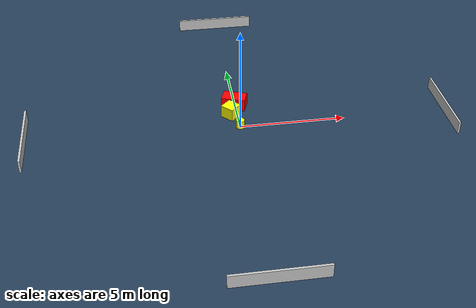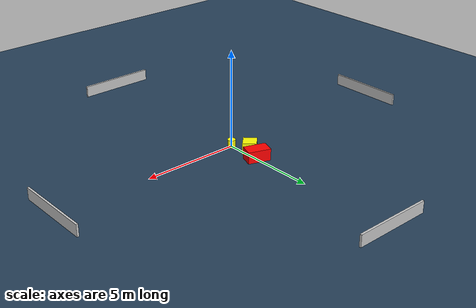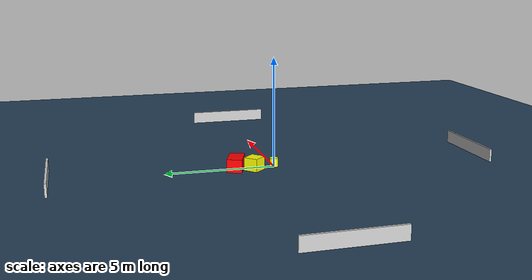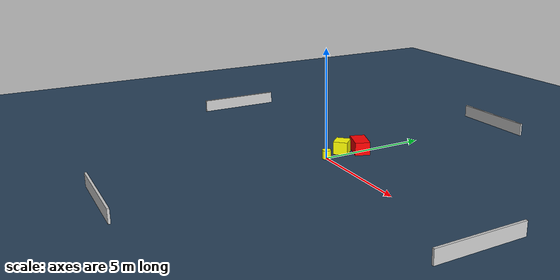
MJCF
<?xml version="1.0" ?>
<mujoco model="generated_environment">
  <option timestep="0.01" integrator="RK4" cone="elliptic"/>
  <default>
    <geom density="1"/>
  </default>
  <asset>
    <texture builtin="gradient" height="3072" name="skybox" rgb1="0.3 0.5 0.7" rgb2="0 0 0" type="skybox" width="512"/>
    <texture builtin="checker" height="300" name="groundplane" rgb1="0.2 0.3 0.4" rgb2="0.1 0.2 0.3" type="2d" width="300"/>
    <material name="groundplane" reflectance="0.2" texrepeat="5 5" texture="groundplane"/>
  </asset>
  <worldbody>
    <light dir="0 0 -1" directional="true" pos="0 0 1.5"/>
    <geom condim="3" friction="0.5 0.005 0.001" material="groundplane" name="floor" pos="0 0 0" size="0 0 0.05" type="plane"/>
    <body name="walls">
      <geom name="wall_1" condim="4" pos="-10.0 0.0 0.3" rgba="0.800000011920929 0.800000011920929 0.800000011920929 1.0" size="0.05 2.0 0.3" type="box"/>
      <geom name="wall_2" condim="4" pos="10.0 0.0 0.3" rgba="0.800000011920929 0.800000011920929 0.800000011920929 1.0" size="0.05 2.0 0.3" type="box"/>
      <geom name="wall_3" condim="4" pos="0.0 -10.0 0.3" rgba="0.800000011920929 0.800000011920929 0.800000011920929 1.0" size="2.0 0.05 0.3" type="box"/>
      <geom name="wall_4" condim="4" pos="0.0 10.0 0.3" rgba="0.800000011920929 0.800000011920929 0.800000011920929 1.0" size="2.0 0.05 0.3" type="box"/>
    </body>
    <body name="robot">
      <joint name="joint_x" type="slide" pos="0 0 0" axis="1 0 0"/>
      <joint name="joint_y" type="slide" pos="0 0 0" axis="0 1 0"/>
      <geom name="robot" type="cylinder" pos="0.0 0.0 0.2" size="0.2 0.2 0.0" mass="5.0" friction="1.0 0.005 0.0001" condim="4" rgba="1.0 1.0 0.0 1.0"/>
    </body>
    <body name="obstacle_1_movable">
      <geom name="obstacle_1_movable" condim="4" pos="-0.3066328105253471 0.9965836844869063 0.3" euler="0 0 44.27305792140187" friction="0.0 0.005 0.001" rgba="1.0 1.0 0.0 1.0" size="0.3329544909317551 0.3439074885268576 0.3" type="box" mass="0.1"/>
      <joint type="free"/>
    </body>
    <body name="obstacle_2_static">
      <geom name="obstacle_2_static" condim="4" pos="-0.0330476865523628 1.7958203151123635 0.3" euler="0 0 70.7912591113641" friction="0.0 0.005 0.001" rgba="1.0 0.0 0.0 1.0" size="0.3465398014331472 0.5725550996476618 0.3" type="box"/>
    </body>
  </worldbody>
  <actuator>
    <motor name="actuator_x" joint="joint_x" gear="1" ctrlrange="-1 1"/>
    <motor name="actuator_y" joint="joint_y" gear="1" ctrlrange="-1 1"/>
  </actuator>
</mujoco>
